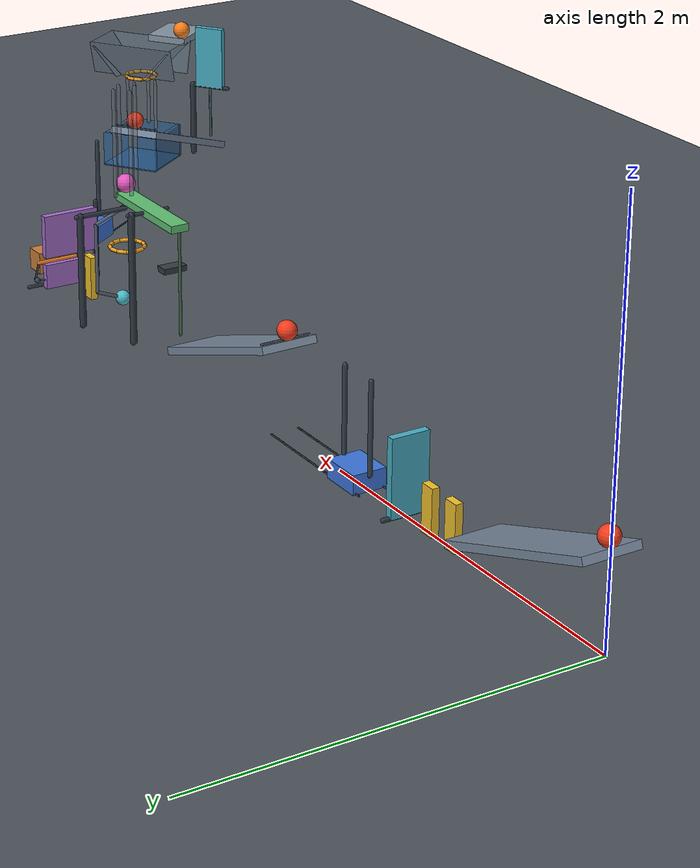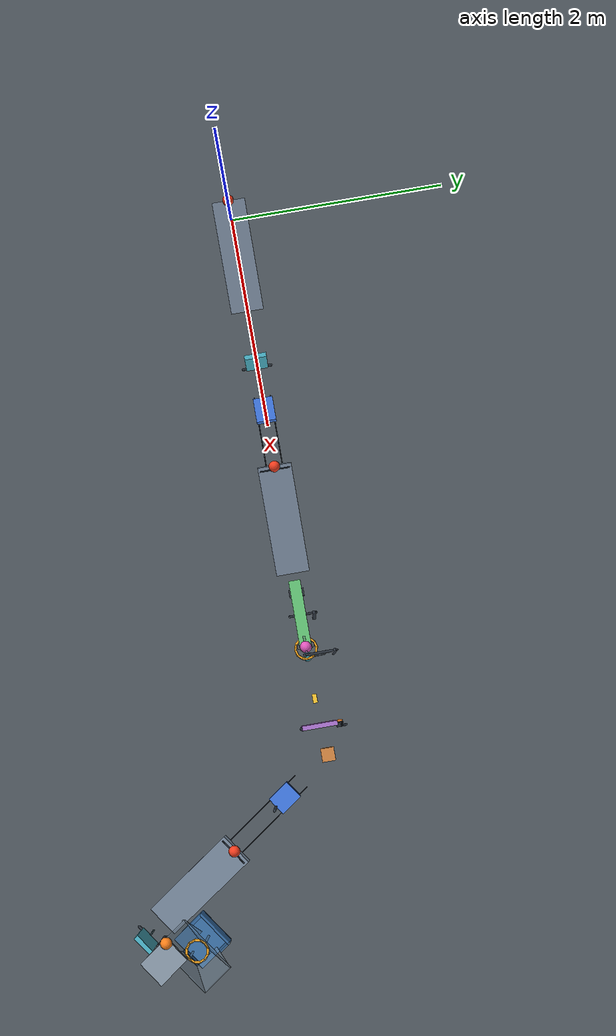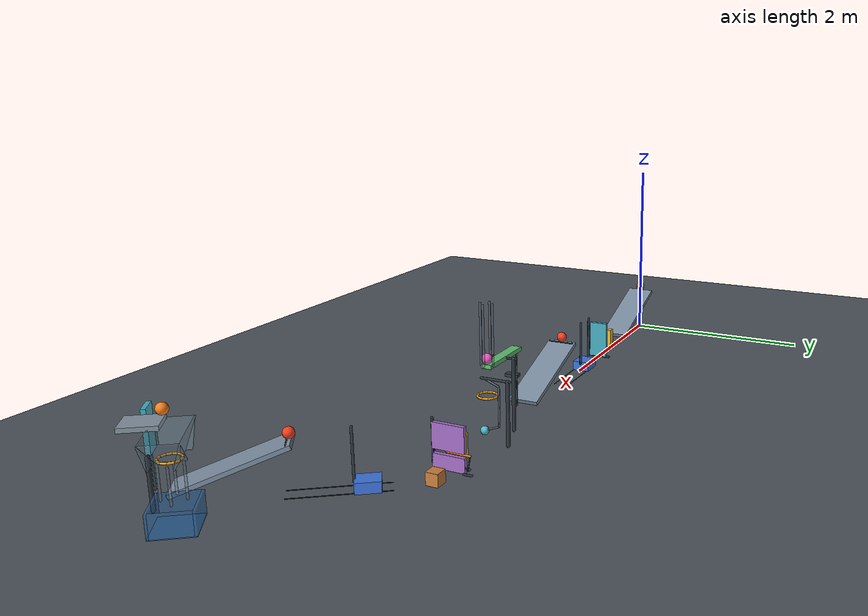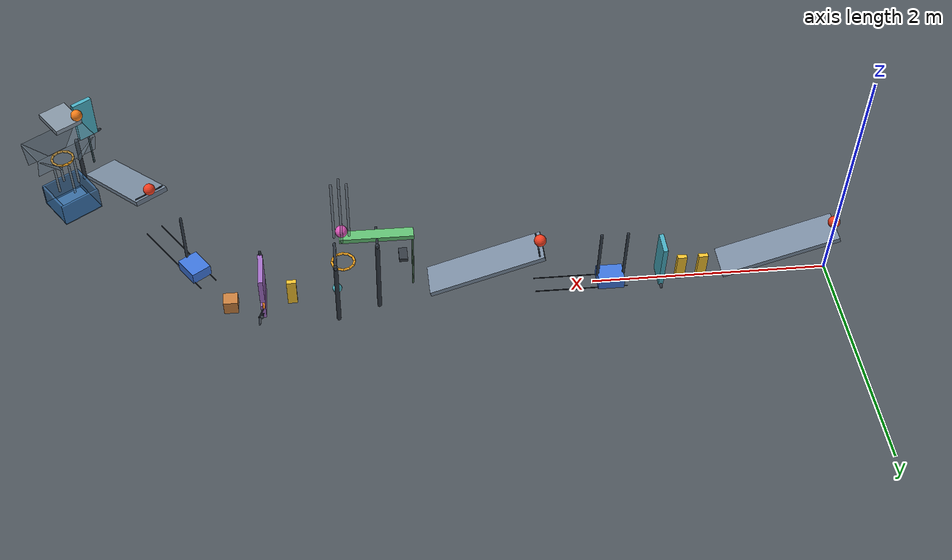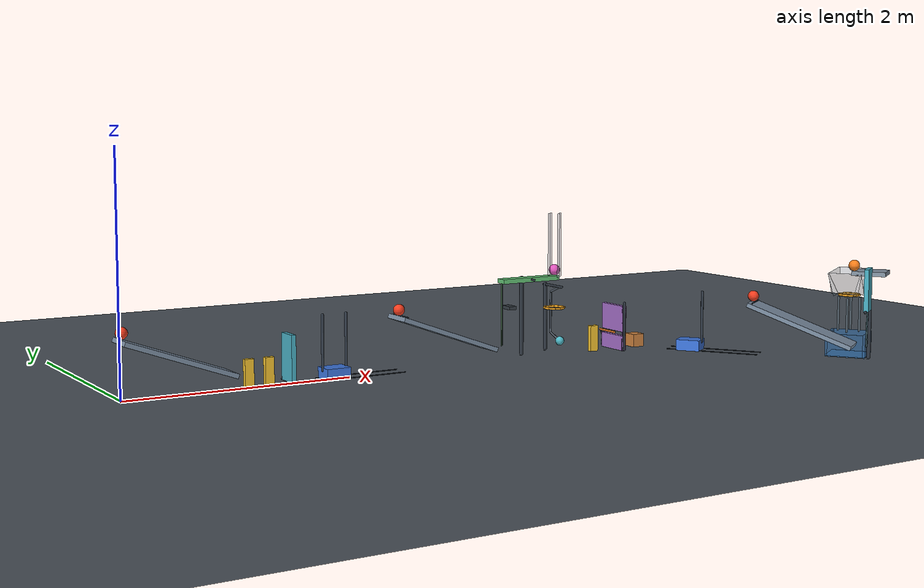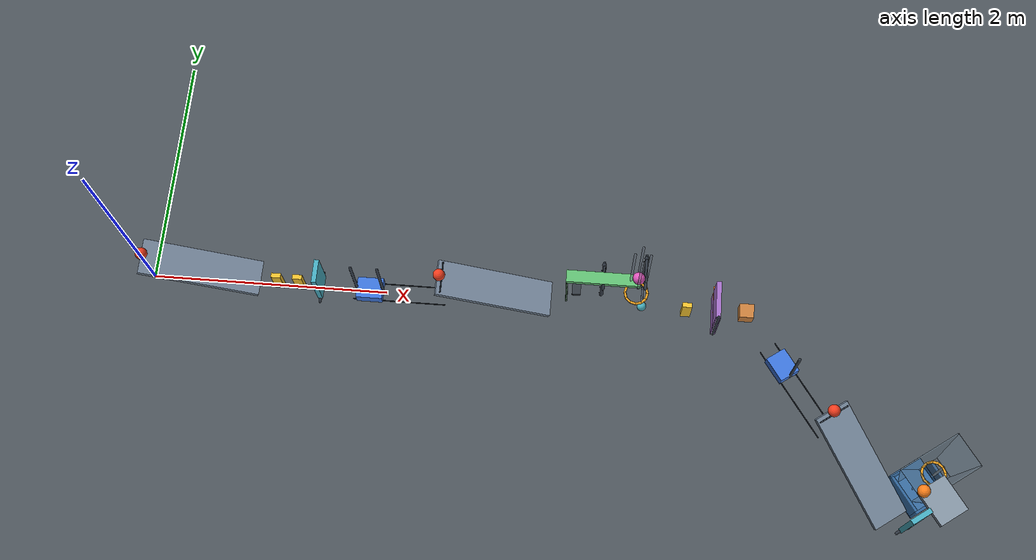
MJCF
<mujoco model="linked_chain_reaction">
  <!-- Unverified construction: the complete 20-second sequence has not been simulated or validated. -->
  <!-- Auxiliary paddles bridge height differences; guides constrain launching and catching. -->
  <!-- The door motor is mechanically latched. All initial generalized velocities are zero. -->
  <!-- Contact solref approximates restitution 0.05; it is not an exact restitution specification. -->

  <compiler angle="degree" autolimits="true" inertiafromgeom="true"/>
  <option timestep="0.002" gravity="0 0 -9.81" integrator="implicitfast" solver="Newton" iterations="100" tolerance="1e-10" cone="elliptic"/>
  <size njmax="4000" nconmax="1000"/>

  <visual>
    <headlight ambient="0.35 0.35 0.35" diffuse="0.65 0.65 0.65" specular="0.15 0.15 0.15"/>
    <map znear="0.01" zfar="50"/>
  </visual>

  <worldbody>
    <light name="overhead_light" pos="3 -2 8" dir="0 0 -1" diffuse="0.8 0.8 0.8"/>
    <camera name="overview" pos="8 -10 7" xyaxes="0.8 0.6 0 -0.3 0.4 0.8660254" fovy="45"/>

    <geom name="floor" type="plane" pos="0 0 0" size="12 8 0.1" friction="0.70 0.005 0.0001" solref="0.006 0.69" solimp="0.95 0.99 0.001" rgba="0.30 0.33 0.36 1"/>

    <!-- Ramp surfaces have 1.00 m length, 0.30 m width, and 20-degree inclination. -->
    <!-- Their downhill surface endpoints are at z = 0.15 m. -->
    <body name="ramp1" pos="0.469846 0 0.321010" quat="0.984807753 0 0.173648178 0">
      <geom name="ramp1_surface" type="box" pos="0 0 -0.02" size="0.50 0.15 0.02" friction="0.70 0.005 0.0001" solref="0.006 0.69" solimp="0.95 0.99 0.001" rgba="0.48 0.55 0.63 1"/>
    </body>

    <body name="ball1" pos="0.017101 0 0.539005">
      <freejoint name="ball1_free"/>
      <geom name="ball1_sphere" type="sphere" size="0.05" mass="0.20" friction="0.70 0.005 0.0001" solref="0.006 0.69" solimp="0.95 0.99 0.001" rgba="0.95 0.24 0.12 1"/>
    </body>

    <!-- Ramp1 endpoint to domino1 front face: 0.10 m. -->
    <body name="domino1" pos="1.079693 0 0.12">
      <freejoint name="domino1_free"/>
      <geom name="domino1_box" type="box" size="0.04 0.02 0.12" mass="0.25" friction="0.70 0.005 0.0001" solref="0.006 0.69" solimp="0.95 0.99 0.001" rgba="0.95 0.76 0.18 1"/>
    </body>

    <!-- Domino centers are 0.18 m apart. -->
    <body name="domino2" pos="1.259693 0 0.12">
      <freejoint name="domino2_free"/>
      <geom name="domino2_box" type="box" size="0.04 0.02 0.12" mass="0.25" friction="0.70 0.005 0.0001" solref="0.006 0.69" solimp="0.95 0.99 0.001" rgba="0.95 0.76 0.18 1"/>
    </body>

    <!-- Bottom-hinged upright flap; positive angle tips its top toward +x. -->
    <body name="flap1" pos="1.439693 0 0.02">
      <joint name="flap1_hinge" type="hinge" axis="0 1 0" damping="0.04" limited="true" range="0 65" solreflimit="0.004 1" solimplimit="0.99 0.999 0.0001"/>
      <geom name="flap1_panel" type="box" pos="0 0 0.20" size="0.02 0.10 0.20" mass="0.30" friction="0.70 0.005 0.0001" solref="0.006 0.69" solimp="0.95 0.99 0.001" rgba="0.28 0.68 0.76 1"/>
    </body>

    <!-- Cart bearing is represented by its horizontal slide joint. -->
    <!-- Lightweight rear and front strikers are included in the 0.50 kg total mass. -->
    <body name="cart1" pos="1.859693 0 0.051">
      <joint name="cart1_slide" type="slide" axis="1 0 0" damping="0.20" limited="true" range="0 0.48" solreflimit="0.004 1" solimplimit="0.99 0.999 0.0001"/>
      <geom name="cart1_box" type="box" size="0.11 0.09 0.05" mass="0.48" friction="0.70 0.005 0.0001" solref="0.006 0.69" solimp="0.95 0.99 0.001" rgba="0.24 0.46 0.86 1"/>
      <geom name="cart1_rear_striker" type="capsule" fromto="-0.11 0 0.03 -0.11 0 0.50" size="0.012" mass="0.01" friction="0.70 0.005 0.0001" solref="0.006 0.69" solimp="0.95 0.99 0.001" rgba="0.20 0.24 0.29 1"/>
      <geom name="cart1_front_striker" type="capsule" fromto="0.11 0 0.03 0.11 0 0.50" size="0.012" mass="0.01" friction="0.70 0.005 0.0001" solref="0.006 0.69" solimp="0.95 0.99 0.001" rgba="0.20 0.24 0.29 1"/>
    </body>

    <!-- A small fixed detent prevents ball2 from rolling before the cart arrives. -->
    <body name="ramp2" pos="2.934438 0 0.321010" quat="0.984807753 0 0.173648178 0">
      <geom name="ramp2_surface" type="box" pos="0 0 -0.02" size="0.50 0.15 0.02" friction="0.70 0.005 0.0001" solref="0.006 0.69" solimp="0.95 0.99 0.001" rgba="0.48 0.55 0.63 1"/>
      <geom name="ramp2_detent" type="capsule" fromto="-0.465359 -0.13 0.006 -0.465359 0.13 0.006" size="0.006" friction="0.70 0.005 0.0001" solref="0.006 0.69" solimp="0.95 0.99 0.001" rgba="0.23 0.28 0.34 1"/>
    </body>

    <!-- Cart1's front striker reaches ball2 after 0.45 m of slide travel. -->
    <body name="ball2" pos="2.481693 0 0.539005">
      <freejoint name="ball2_free"/>
      <geom name="ball2_sphere" type="sphere" size="0.05" mass="0.20" friction="0.70 0.005 0.0001" solref="0.006 0.69" solimp="0.95 0.99 0.001" rgba="0.95 0.24 0.12 1"/>
    </body>

    <!-- The left-end input paddle receives ball2 across a 0.12 m ramp exit gap. -->
    <!-- Its low contact point provides torque to lift the right end of the beam. -->
    <body name="lever1" pos="3.824285 0 0.72">
      <joint name="lever1_hinge" type="hinge" axis="0 -1 0" damping="0.04" limited="true" range="0 45" solreflimit="0.004 1" solimplimit="0.99 0.999 0.0001"/>
      <geom name="lever1_beam" type="box" size="0.30 0.05 0.02" mass="0.485" friction="0.70 0.005 0.0001" solref="0.006 0.69" solimp="0.95 0.99 0.001" rgba="0.38 0.75 0.45 1"/>
      <geom name="lever1_input_paddle" type="capsule" fromto="-0.292 0 -0.02 -0.292 0 -0.58" size="0.008" mass="0.015" friction="0.70 0.005 0.0001" solref="0.006 0.69" solimp="0.95 0.99 0.001" rgba="0.25 0.38 0.28 1"/>
    </body>

    <body name="lever1_lower_stop" pos="3.612153 0 0.478730">
      <geom name="lever1_lower_stop_box" type="box" size="0.035 0.065 0.015" friction="0.70 0.005 0.0001" solref="0.006 0.69" solimp="0.95 0.99 0.001" rgba="0.20 0.23 0.26 1"/>
    </body>

    <body name="ball3" pos="4.104285 0 0.79">
      <freejoint name="ball3_free"/>
      <geom name="ball3_sphere" type="sphere" size="0.05" mass="0.20" contype="2" conaffinity="3" friction="0.70 0.005 0.0001" solref="0.006 0.69" solimp="0.95 0.99 0.001" rgba="0.88 0.34 0.74 1"/>
    </body>

    <!-- These rails collide only with ball3, not with the lever moving beneath it. -->
    <body name="launch_guide" pos="4.104285 0 0.79">
      <geom name="launch_guide_x_positive" type="capsule" fromto="0.061 0 -0.06 0.061 0 0.51" size="0.01" contype="2" conaffinity="2" friction="0.70 0.005 0.0001" solref="0.006 0.69" solimp="0.95 0.99 0.001" rgba="0.45 0.49 0.55 0.35"/>
      <geom name="launch_guide_x_negative" type="capsule" fromto="-0.061 0 -0.06 -0.061 0 0.51" size="0.01" contype="2" conaffinity="2" friction="0.70 0.005 0.0001" solref="0.006 0.69" solimp="0.95 0.99 0.001" rgba="0.45 0.49 0.55 0.35"/>
      <geom name="launch_guide_y_positive" type="capsule" fromto="0 0.061 -0.06 0 0.061 0.51" size="0.01" contype="2" conaffinity="2" friction="0.70 0.005 0.0001" solref="0.006 0.69" solimp="0.95 0.99 0.001" rgba="0.45 0.49 0.55 0.35"/>
      <geom name="launch_guide_y_negative" type="capsule" fromto="0 -0.061 -0.06 0 -0.061 0.51" size="0.01" contype="2" conaffinity="2" friction="0.70 0.005 0.0001" solref="0.006 0.69" solimp="0.95 0.99 0.001" rgba="0.45 0.49 0.55 0.35"/>
    </body>

    <!-- Twelve capsules form a horizontal ring with 0.16 m minimum clear diameter. -->
    <!-- Centerline apothem is 0.09 m and tube radius is 0.01 m. -->
    <body name="ring1" pos="4.104285 0 0.44">
      <geom name="ring1_segment_01" type="capsule" fromto="0.093175 0 0 0.080692 0.046587 0" size="0.01" friction="0.70 0.005 0.0001" solref="0.006 0.69" solimp="0.95 0.99 0.001" rgba="0.94 0.64 0.12 1"/>
      <geom name="ring1_segment_02" type="capsule" fromto="0.080692 0.046587 0 0.046587 0.080692 0" size="0.01" friction="0.70 0.005 0.0001" solref="0.006 0.69" solimp="0.95 0.99 0.001" rgba="0.94 0.64 0.12 1"/>
      <geom name="ring1_segment_03" type="capsule" fromto="0.046587 0.080692 0 0 0.093175 0" size="0.01" friction="0.70 0.005 0.0001" solref="0.006 0.69" solimp="0.95 0.99 0.001" rgba="0.94 0.64 0.12 1"/>
      <geom name="ring1_segment_04" type="capsule" fromto="0 0.093175 0 -0.046587 0.080692 0" size="0.01" friction="0.70 0.005 0.0001" solref="0.006 0.69" solimp="0.95 0.99 0.001" rgba="0.94 0.64 0.12 1"/>
      <geom name="ring1_segment_05" type="capsule" fromto="-0.046587 0.080692 0 -0.080692 0.046587 0" size="0.01" friction="0.70 0.005 0.0001" solref="0.006 0.69" solimp="0.95 0.99 0.001" rgba="0.94 0.64 0.12 1"/>
      <geom name="ring1_segment_06" type="capsule" fromto="-0.080692 0.046587 0 -0.093175 0 0" size="0.01" friction="0.70 0.005 0.0001" solref="0.006 0.69" solimp="0.95 0.99 0.001" rgba="0.94 0.64 0.12 1"/>
      <geom name="ring1_segment_07" type="capsule" fromto="-0.093175 0 0 -0.080692 -0.046587 0" size="0.01" friction="0.70 0.005 0.0001" solref="0.006 0.69" solimp="0.95 0.99 0.001" rgba="0.94 0.64 0.12 1"/>
      <geom name="ring1_segment_08" type="capsule" fromto="-0.080692 -0.046587 0 -0.046587 -0.080692 0" size="0.01" friction="0.70 0.005 0.0001" solref="0.006 0.69" solimp="0.95 0.99 0.001" rgba="0.94 0.64 0.12 1"/>
      <geom name="ring1_segment_09" type="capsule" fromto="-0.046587 -0.080692 0 0 -0.093175 0" size="0.01" friction="0.70 0.005 0.0001" solref="0.006 0.69" solimp="0.95 0.99 0.001" rgba="0.94 0.64 0.12 1"/>
      <geom name="ring1_segment_10" type="capsule" fromto="0 -0.093175 0 0.046587 -0.080692 0" size="0.01" friction="0.70 0.005 0.0001" solref="0.006 0.69" solimp="0.95 0.99 0.001" rgba="0.94 0.64 0.12 1"/>
      <geom name="ring1_segment_11" type="capsule" fromto="0.046587 -0.080692 0 0.080692 -0.046587 0" size="0.01" friction="0.70 0.005 0.0001" solref="0.006 0.69" solimp="0.95 0.99 0.001" rgba="0.94 0.64 0.12 1"/>
      <geom name="ring1_segment_12" type="capsule" fromto="0.080692 -0.046587 0 0.093175 0 0" size="0.01" friction="0.70 0.005 0.0001" solref="0.006 0.69" solimp="0.95 0.99 0.001" rgba="0.94 0.64 0.12 1"/>
    </body>

    <!-- Pivot-to-bob distance is 0.50 m; total rigid-pendulum mass is 0.35 kg. -->
    <!-- A transverse dogleg keeps its rod outside ring1 while the bob remains beneath the pivot. -->
    <body name="pendulum1" pos="4.167925 0 0.626360">
      <joint name="pendulum1_hinge" type="hinge" axis="0 -1 0" damping="0.04" limited="true" range="0 40" solreflimit="0.004 1" solimplimit="0.99 0.999 0.0001"/>
      <geom name="pendulum1_upper_link" type="capsule" fromto="0 0 0 0 0.15 -0.06" size="0.009" mass="0.04" friction="0.70 0.005 0.0001" solref="0.006 0.69" solimp="0.95 0.99 0.001" rgba="0.35 0.39 0.44 1"/>
      <geom name="pendulum1_middle_link" type="capsule" fromto="0 0.15 -0.06 0 0.15 -0.44" size="0.009" mass="0.24" friction="0.70 0.005 0.0001" solref="0.006 0.69" solimp="0.95 0.99 0.001" rgba="0.35 0.39 0.44 1"/>
      <geom name="pendulum1_lower_link" type="capsule" fromto="0 0.15 -0.44 0 0 -0.50" size="0.009" mass="0.04" friction="0.70 0.005 0.0001" solref="0.006 0.69" solimp="0.95 0.99 0.001" rgba="0.35 0.39 0.44 1"/>
      <geom name="pendulum1_bob" type="sphere" pos="0 0 -0.50" size="0.04" mass="0.03" friction="0.70 0.005 0.0001" solref="0.006 0.69" solimp="0.95 0.99 0.001" rgba="0.30 0.72 0.78 1"/>
    </body>

    <!-- Nominal bob contact with domino3 occurs after 0.32 m of arc, before the 40-degree stop. -->
    <body name="domino3" pos="4.546523 0 0.12">
      <freejoint name="domino3_free"/>
      <geom name="domino3_box" type="box" size="0.04 0.02 0.12" mass="0.25" friction="0.70 0.005 0.0001" solref="0.006 0.69" solimp="0.95 0.99 0.001" rgba="0.95 0.76 0.18 1"/>
    </body>

    <!-- Door panel envelope: 0.42 m high, 0.32 m wide, 0.04 m thick. -->
    <!-- Its narrow horizontal slot accommodates the mechanical release bar. -->
    <!-- The panel, frame, and latch hook together have mass 0.45 kg. -->
    <body name="door1" pos="4.786523 -0.16 0.212">
      <joint name="door1_hinge" type="hinge" axis="0 0 -1" damping="0.04" limited="true" range="0 70" solreflimit="0.004 1" solimplimit="0.99 0.999 0.0001"/>
      <geom name="door1_lower_panel" type="box" pos="0 0.16 -0.141" size="0.02 0.16 0.069" mass="0.143" friction="0.70 0.005 0.0001" solref="0.006 0.69" solimp="0.95 0.99 0.001" rgba="0.64 0.43 0.78 1"/>
      <geom name="door1_upper_panel" type="box" pos="0 0.16 0.089" size="0.02 0.16 0.121" mass="0.252" friction="0.70 0.005 0.0001" solref="0.006 0.69" solimp="0.95 0.99 0.001" rgba="0.64 0.43 0.78 1"/>
      <geom name="door1_edge_frame" type="box" pos="0 0.005 0" size="0.02 0.005 0.21" mass="0.030" friction="0.70 0.005 0.0001" solref="0.006 0.69" solimp="0.95 0.99 0.001" rgba="0.40 0.27 0.52 1"/>
      <geom name="door1_hook_arm" type="capsule" fromto="0 0.31 -0.162 0.015 0.36 -0.162" size="0.006" mass="0.010" friction="0.70 0.005 0.0001" solref="0.006 0.69" solimp="0.95 0.99 0.001" rgba="0.24 0.27 0.31 1"/>
      <geom name="door1_hook" type="sphere" pos="0.015 0.36 -0.162" size="0.015" mass="0.015" friction="0.70 0.005 0.0001" solref="0.006 0.69" solimp="0.95 0.99 0.001" rgba="0.24 0.27 0.31 1"/>
    </body>

    <!-- Domino3's front face is 0.18 m from the release bar's front surface. -->
    <!-- The latch holds the powered door at rest until struck by the falling domino. -->
    <body name="door_latch" pos="4.824523 0.20 0.01">
      <joint name="door_latch_hinge" type="hinge" axis="0 1 0" damping="0.04" frictionloss="0.35" limited="true" range="0 90" solreflimit="0.004 1" solimplimit="0.99 0.999 0.0001"/>
      <geom name="door_latch_pin" type="sphere" pos="0 0 0.04" size="0.008" mass="0.01" friction="0.70 0.005 0.0001" solref="0.006 0.69" solimp="0.95 0.99 0.001" rgba="0.25 0.28 0.32 1"/>
      <geom name="door_latch_shank" type="capsule" fromto="0 0 0.04 -0.048 0 0.15" size="0.006" mass="0.04" friction="0.70 0.005 0.0001" solref="0.006 0.69" solimp="0.95 0.99 0.001" rgba="0.25 0.28 0.32 1"/>
      <geom name="door_latch_release_bar" type="capsule" fromto="-0.048 -0.225 0.15 -0.048 0 0.15" size="0.01" mass="0.10" friction="0.70 0.005 0.0001" solref="0.006 0.69" solimp="0.95 0.99 0.001" rgba="0.90 0.48 0.14 1"/>
    </body>

    <body name="block1" pos="5.057323 0.030500 0.06">
      <freejoint name="block1_free"/>
      <geom name="block1_cube" type="box" size="0.06 0.06 0.06" mass="0.35" friction="0.70 0.005 0.0001" solref="0.006 0.69" solimp="0.95 0.99 0.001" rgba="0.79 0.50 0.24 1"/>
    </body>

    <!-- Cart2's slide direction is 55 degrees clockwise from world +x. -->
    <!-- The initial block-to-cart clearance along that direction is 0.35 m. -->
    <body name="cart2" pos="5.369098 -0.414761 0.051" quat="0.887010833 0 0 -0.461748613">
      <joint name="cart2_slide" type="slide" axis="1 0 0" damping="0.20" limited="true" range="0 0.45" solreflimit="0.004 1" solimplimit="0.99 0.999 0.0001"/>
      <geom name="cart2_box" type="box" size="0.11 0.09 0.05" mass="0.49" friction="0.70 0.005 0.0001" solref="0.006 0.69" solimp="0.95 0.99 0.001" rgba="0.24 0.46 0.86 1"/>
      <geom name="cart2_front_striker" type="capsule" fromto="0.11 0 0.03 0.11 0 0.50" size="0.012" mass="0.01" friction="0.70 0.005 0.0001" solref="0.006 0.69" solimp="0.95 0.99 0.001" rgba="0.20 0.24 0.29 1"/>
    </body>

    <body name="ramp3" pos="5.968339 -1.270566 0.321010" quat="0.873535146 0.080181805 0.154027815 -0.454733614">
      <geom name="ramp3_surface" type="box" pos="0 0 -0.02" size="0.50 0.15 0.02" friction="0.70 0.005 0.0001" solref="0.006 0.69" solimp="0.95 0.99 0.001" rgba="0.48 0.55 0.63 1"/>
      <geom name="ramp3_detent" type="capsule" fromto="-0.465359 -0.13 0.006 -0.465359 0.13 0.006" size="0.006" friction="0.70 0.005 0.0001" solref="0.006 0.69" solimp="0.95 0.99 0.001" rgba="0.23 0.28 0.34 1"/>
    </body>

    <!-- Cart2's front striker reaches ball4 after 0.42 m of slide travel. -->
    <body name="ball4" pos="5.708655 -0.899699 0.539005">
      <freejoint name="ball4_free"/>
      <geom name="ball4_sphere" type="sphere" size="0.05" mass="0.20" friction="0.70 0.005 0.0001" solref="0.006 0.69" solimp="0.95 0.99 0.001" rgba="0.95 0.24 0.12 1"/>
    </body>

    <!-- Ramp3 exit to the input paddle's front surface: 0.10 m. -->
    <!-- The upright upper panel swings toward the shelf; its lower input paddle receives ball4. -->
    <body name="flap2" pos="6.299778 -1.743910 0.46" quat="0.887010833 0 0 -0.461748613">
      <joint name="flap2_hinge" type="hinge" axis="0 -1 0" damping="0.04" limited="true" range="0 60" solreflimit="0.004 1" solimplimit="0.99 0.999 0.0001"/>
      <geom name="flap2_panel" type="box" pos="0 0 0.19" size="0.02 0.09 0.19" mass="0.265" friction="0.70 0.005 0.0001" solref="0.006 0.69" solimp="0.95 0.99 0.001" rgba="0.28 0.68 0.76 1"/>
      <geom name="flap2_input_paddle" type="capsule" fromto="0 0 -0.02 0 0 -0.32" size="0.008" mass="0.015" friction="0.70 0.005 0.0001" solref="0.006 0.69" solimp="0.95 0.99 0.001" rgba="0.24 0.35 0.38 1"/>
    </body>

    <!-- Shelf top is z = 0.80 m. -->
    <body name="shelf1" pos="6.471388 -1.605436 0.78" quat="0.887010833 0 0 -0.461748613">
      <geom name="shelf1_plate" type="box" size="0.15 0.125 0.02" friction="0.70 0.005 0.0001" solref="0.006 0.69" solimp="0.95 0.99 0.001" rgba="0.52 0.58 0.64 1"/>
    </body>

    <body name="ball5" pos="6.317365 -1.554583 0.85">
      <freejoint name="ball5_free"/>
      <geom name="ball5_sphere" type="sphere" size="0.05" mass="0.20" friction="0.70 0.005 0.0001" solref="0.006 0.69" solimp="0.95 0.99 0.001" rgba="0.98 0.50 0.10 1"/>
    </body>

    <!-- Ring2 plane is 0.30 m below ball5's initial center. -->
    <body name="ring2" pos="6.473810 -1.347378 0.55" quat="0.887010833 0 0 -0.461748613">
      <geom name="ring2_segment_01" type="capsule" fromto="0.093175 0 0 0.080692 0.046587 0" size="0.01" friction="0.70 0.005 0.0001" solref="0.006 0.69" solimp="0.95 0.99 0.001" rgba="0.94 0.64 0.12 1"/>
      <geom name="ring2_segment_02" type="capsule" fromto="0.080692 0.046587 0 0.046587 0.080692 0" size="0.01" friction="0.70 0.005 0.0001" solref="0.006 0.69" solimp="0.95 0.99 0.001" rgba="0.94 0.64 0.12 1"/>
      <geom name="ring2_segment_03" type="capsule" fromto="0.046587 0.080692 0 0 0.093175 0" size="0.01" friction="0.70 0.005 0.0001" solref="0.006 0.69" solimp="0.95 0.99 0.001" rgba="0.94 0.64 0.12 1"/>
      <geom name="ring2_segment_04" type="capsule" fromto="0 0.093175 0 -0.046587 0.080692 0" size="0.01" friction="0.70 0.005 0.0001" solref="0.006 0.69" solimp="0.95 0.99 0.001" rgba="0.94 0.64 0.12 1"/>
      <geom name="ring2_segment_05" type="capsule" fromto="-0.046587 0.080692 0 -0.080692 0.046587 0" size="0.01" friction="0.70 0.005 0.0001" solref="0.006 0.69" solimp="0.95 0.99 0.001" rgba="0.94 0.64 0.12 1"/>
      <geom name="ring2_segment_06" type="capsule" fromto="-0.080692 0.046587 0 -0.093175 0 0" size="0.01" friction="0.70 0.005 0.0001" solref="0.006 0.69" solimp="0.95 0.99 0.001" rgba="0.94 0.64 0.12 1"/>
      <geom name="ring2_segment_07" type="capsule" fromto="-0.093175 0 0 -0.080692 -0.046587 0" size="0.01" friction="0.70 0.005 0.0001" solref="0.006 0.69" solimp="0.95 0.99 0.001" rgba="0.94 0.64 0.12 1"/>
      <geom name="ring2_segment_08" type="capsule" fromto="-0.080692 -0.046587 0 -0.046587 -0.080692 0" size="0.01" friction="0.70 0.005 0.0001" solref="0.006 0.69" solimp="0.95 0.99 0.001" rgba="0.94 0.64 0.12 1"/>
      <geom name="ring2_segment_09" type="capsule" fromto="-0.046587 -0.080692 0 0 -0.093175 0" size="0.01" friction="0.70 0.005 0.0001" solref="0.006 0.69" solimp="0.95 0.99 0.001" rgba="0.94 0.64 0.12 1"/>
      <geom name="ring2_segment_10" type="capsule" fromto="0 -0.093175 0 0.046587 -0.080692 0" size="0.01" friction="0.70 0.005 0.0001" solref="0.006 0.69" solimp="0.95 0.99 0.001" rgba="0.94 0.64 0.12 1"/>
      <geom name="ring2_segment_11" type="capsule" fromto="0.046587 -0.080692 0 0.080692 -0.046587 0" size="0.01" friction="0.70 0.005 0.0001" solref="0.006 0.69" solimp="0.95 0.99 0.001" rgba="0.94 0.64 0.12 1"/>
      <geom name="ring2_segment_12" type="capsule" fromto="0.080692 -0.046587 0 0.093175 0 0" size="0.01" friction="0.70 0.005 0.0001" solref="0.006 0.69" solimp="0.95 0.99 0.001" rgba="0.94 0.64 0.12 1"/>
    </body>

    <!-- A steep asymmetric funnel captures the lateral component of the shelf knock. -->
    <!-- Its lower opening is above ring2, leaving the ring's clear aperture unobstructed. -->
    <body name="catch_guide" pos="6.473810 -1.347378 0.67" quat="0.887010833 0 0 -0.461748613">
      <geom name="catch_guide_x_positive_wall" type="box" pos="0.117686 0 0" quat="0.991011 0 0.133782 0" size="0.005 0.275 0.103712" friction="0.70 0.005 0.0001" solref="0.006 0.69" solimp="0.95 0.99 0.001" rgba="0.45 0.55 0.62 0.35"/>
      <geom name="catch_guide_x_negative_wall" type="box" pos="-0.117686 0 0" quat="0.991011 0 -0.133782 0" size="0.005 0.275 0.103712" friction="0.70 0.005 0.0001" solref="0.006 0.69" solimp="0.95 0.99 0.001" rgba="0.45 0.55 0.62 0.35"/>
      <geom name="catch_guide_y_positive_wall" type="box" pos="0 0.181727 0" quat="0.933620 -0.358264 0 0" size="0.145 0.005 0.134536" friction="0.70 0.005 0.0001" solref="0.006 0.69" solimp="0.95 0.99 0.001" rgba="0.45 0.55 0.62 0.35"/>
      <geom name="catch_guide_y_negative_wall" type="box" pos="0 -0.181727 0" quat="0.933620 0.358264 0 0" size="0.145 0.005 0.134536" friction="0.70 0.005 0.0001" solref="0.006 0.69" solimp="0.95 0.99 0.001" rgba="0.45 0.55 0.62 0.35"/>
      <geom name="catch_guide_lower_x_positive" type="capsule" fromto="0.096 0 -0.45 0.096 0 -0.15" size="0.01" friction="0.70 0.005 0.0001" solref="0.006 0.69" solimp="0.95 0.99 0.001" rgba="0.45 0.55 0.62 0.35"/>
      <geom name="catch_guide_lower_x_negative" type="capsule" fromto="-0.096 0 -0.45 -0.096 0 -0.15" size="0.01" friction="0.70 0.005 0.0001" solref="0.006 0.69" solimp="0.95 0.99 0.001" rgba="0.45 0.55 0.62 0.35"/>
      <geom name="catch_guide_lower_y_positive" type="capsule" fromto="0 0.096 -0.45 0 0.096 -0.15" size="0.01" friction="0.70 0.005 0.0001" solref="0.006 0.69" solimp="0.95 0.99 0.001" rgba="0.45 0.55 0.62 0.35"/>
      <geom name="catch_guide_lower_y_negative" type="capsule" fromto="0 -0.096 -0.45 0 -0.096 -0.15" size="0.01" friction="0.70 0.005 0.0001" solref="0.006 0.69" solimp="0.95 0.99 0.001" rgba="0.45 0.55 0.62 0.35"/>
    </body>

    <!-- Bin rim is 0.35 m below ring2. Inner footprint is 0.32 by 0.32 m. -->
    <!-- Walls are 0.20 m high and 0.02 m thick; the floor supplies the collision surface beneath the bin. -->
    <body name="bin1" pos="6.473810 -1.347378 0" quat="0.887010833 0 0 -0.461748613">
      <geom name="bin1_base" type="box" pos="0 0 -0.01" size="0.18 0.18 0.01" contype="0" conaffinity="0" friction="0.70 0.005 0.0001" solref="0.006 0.69" solimp="0.95 0.99 0.001" rgba="0.22 0.42 0.62 1"/>
      <geom name="bin1_x_positive_wall" type="box" pos="0.17 0 0.10" size="0.01 0.18 0.10" friction="0.70 0.005 0.0001" solref="0.006 0.69" solimp="0.95 0.99 0.001" rgba="0.22 0.42 0.62 0.75"/>
      <geom name="bin1_x_negative_wall" type="box" pos="-0.17 0 0.10" size="0.01 0.18 0.10" friction="0.70 0.005 0.0001" solref="0.006 0.69" solimp="0.95 0.99 0.001" rgba="0.22 0.42 0.62 0.75"/>
      <geom name="bin1_y_positive_wall" type="box" pos="0 0.17 0.10" size="0.16 0.01 0.10" friction="0.70 0.005 0.0001" solref="0.006 0.69" solimp="0.95 0.99 0.001" rgba="0.22 0.42 0.62 0.75"/>
      <geom name="bin1_y_negative_wall" type="box" pos="0 -0.17 0.10" size="0.16 0.01 0.10" friction="0.70 0.005 0.0001" solref="0.006 0.69" solimp="0.95 0.99 0.001" rgba="0.22 0.42 0.62 0.75"/>
    </body>

    <!-- Decorative bearing and rail geometry; joint constraints supply the actual bearings. -->
    <body name="bearing_structure" pos="0 0 0">
      <geom name="bearing_structure_flap1_axle" type="capsule" fromto="1.439693 -0.13 0.02 1.439693 0.13 0.02" size="0.012" contype="0" conaffinity="0" friction="0.70 0.005 0.0001" rgba="0.18 0.21 0.25 1"/>
      <geom name="bearing_structure_cart1_rail_left" type="capsule" fromto="1.72 -0.075 0.007 2.50 -0.075 0.007" size="0.004" contype="0" conaffinity="0" friction="0.70 0.005 0.0001" rgba="0.18 0.21 0.25 1"/>
      <geom name="bearing_structure_cart1_rail_right" type="capsule" fromto="1.72 0.075 0.007 2.50 0.075 0.007" size="0.004" contype="0" conaffinity="0" friction="0.70 0.005 0.0001" rgba="0.18 0.21 0.25 1"/>
      <geom name="bearing_structure_lever_post" type="capsule" fromto="3.824285 0.12 0.02 3.824285 0.12 0.72" size="0.018" contype="0" conaffinity="0" friction="0.70 0.005 0.0001" rgba="0.18 0.21 0.25 1"/>
      <geom name="bearing_structure_lever_axle" type="capsule" fromto="3.824285 -0.09 0.72 3.824285 0.14 0.72" size="0.01" contype="0" conaffinity="0" friction="0.70 0.005 0.0001" rgba="0.18 0.21 0.25 1"/>
      <geom name="bearing_structure_pendulum_post" type="capsule" fromto="4.167925 0.24 0.02 4.167925 0.24 0.626360" size="0.018" contype="0" conaffinity="0" friction="0.70 0.005 0.0001" rgba="0.18 0.21 0.25 1"/>
      <geom name="bearing_structure_pendulum_axle" type="capsule" fromto="4.167925 -0.025 0.626360 4.167925 0.26 0.626360" size="0.012" contype="0" conaffinity="0" friction="0.70 0.005 0.0001" rgba="0.18 0.21 0.25 1"/>
      <geom name="bearing_structure_door_axle" type="capsule" fromto="4.786523 -0.16 0.01 4.786523 -0.16 0.45" size="0.012" contype="0" conaffinity="0" friction="0.70 0.005 0.0001" rgba="0.18 0.21 0.25 1"/>
      <geom name="bearing_structure_latch_axle" type="capsule" fromto="4.824523 0.16 0.01 4.824523 0.24 0.01" size="0.01" contype="0" conaffinity="0" friction="0.70 0.005 0.0001" rgba="0.18 0.21 0.25 1"/>
      <geom name="bearing_structure_cart2_rail_left" type="capsule" fromto="5.315819 -0.207913 0.007 5.803359 -0.904192 0.007" size="0.004" contype="0" conaffinity="0" friction="0.70 0.005 0.0001" rgba="0.18 0.21 0.25 1"/>
      <geom name="bearing_structure_cart2_rail_right" type="capsule" fromto="5.192947 -0.293949 0.007 5.680487 -0.990228 0.007" size="0.004" contype="0" conaffinity="0" friction="0.70 0.005 0.0001" rgba="0.18 0.21 0.25 1"/>
      <geom name="bearing_structure_flap2_post" type="capsule" fromto="6.398076 -1.675081 0.02 6.398076 -1.675081 0.46" size="0.018" contype="0" conaffinity="0" friction="0.70 0.005 0.0001" rgba="0.18 0.21 0.25 1"/>
      <geom name="bearing_structure_flap2_axle" type="capsule" fromto="6.201480 -1.812739 0.46 6.398076 -1.675081 0.46" size="0.012" contype="0" conaffinity="0" friction="0.70 0.005 0.0001" rgba="0.18 0.21 0.25 1"/>
    </body>
  </worldbody>

  <actuator>
    <motor name="door1_drive" joint="door1_hinge" gear="1" ctrllimited="true" ctrlrange="0 2.5"/>
  </actuator>

  <keyframe>
    <!-- Omitted qpos uses the compiled initial pose; omitted qvel is identically zero. -->
    <key name="start" ctrl="2.5"/>
  </keyframe>
</mujoco>
